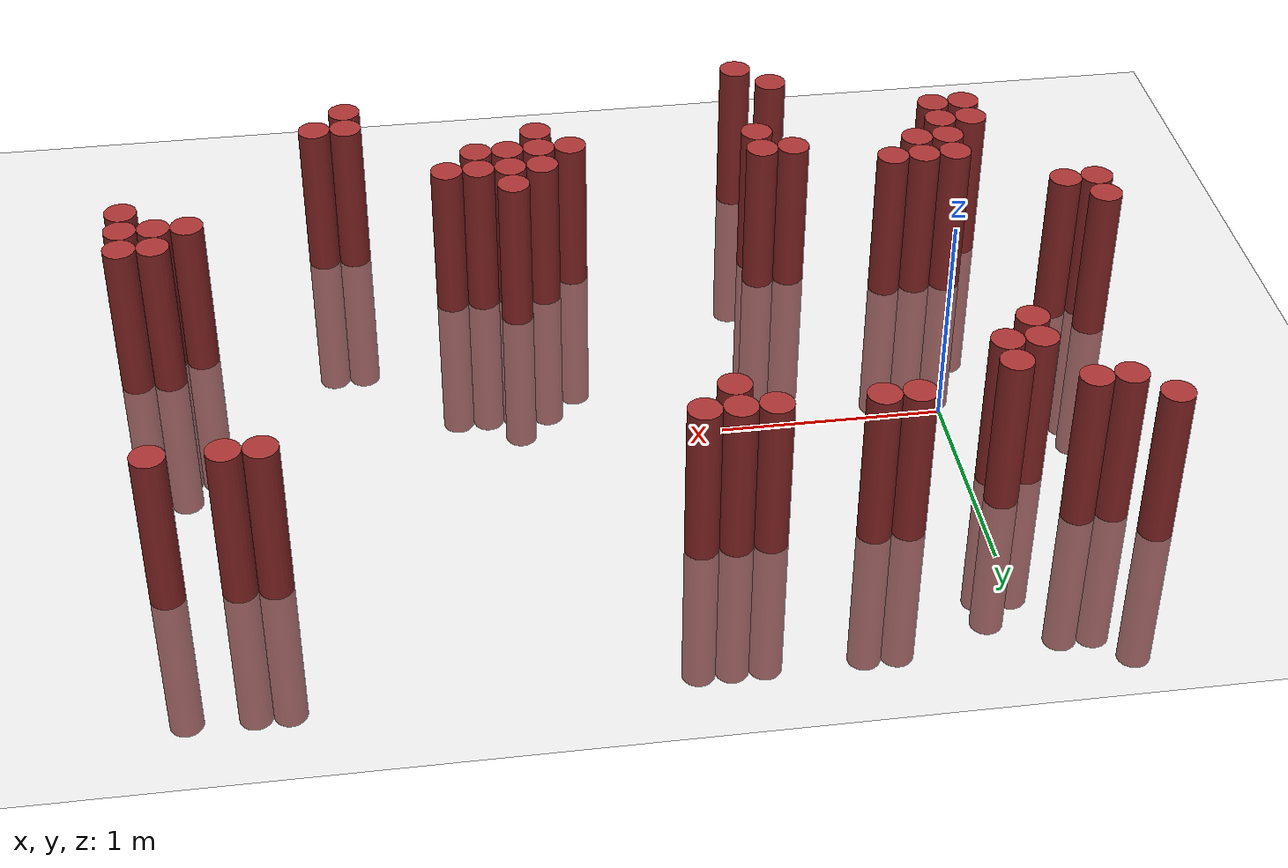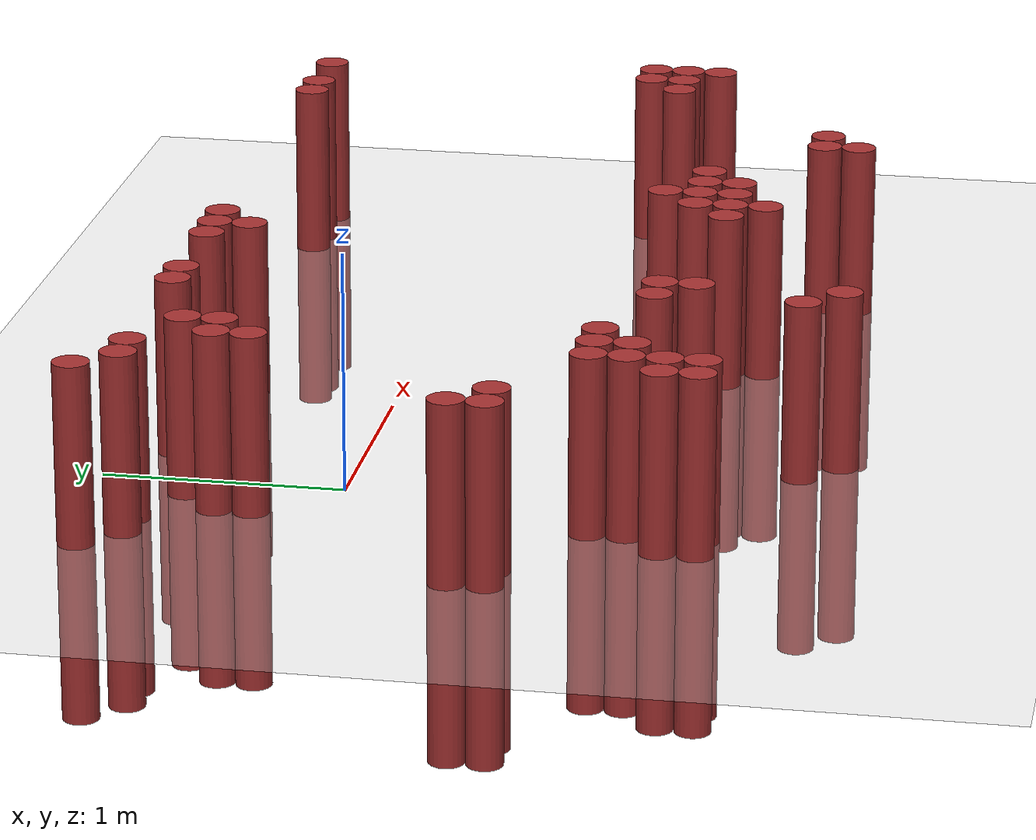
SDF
<sdf version="1.6">
 <world name="default">
  <model name="ground_plane">
   <static>1</static>
   <link name="link">
    <collision name="collision">
     <geometry><plane><normal>0 0 1</normal><size>100 100</size></plane></geometry>
     <surface><friction><ode><mu>100</mu><mu2>50</mu2></ode></friction></surface>
    </collision>
    <visual name="visual">
     <cast_shadows>0</cast_shadows>
     <geometry><plane><normal>0 0 1</normal><size>100 100</size></plane></geometry>
     <material>
      <script><uri>file://media/materials/scripts/gazebo.material</uri><name>Gazebo/Grey</name></script>
     </material>
    </visual>
   </link>
  </model>
  <model name="unit_cylinder_308">
   <static>1</static>
   <pose>-0.875000 -0.725000 0.000000 0.000000 0.000000 0.000000</pose>
   <link name="link">
    <inertial>
     <mass>1</mass>
     <inertia><ixx>0.145833</ixx><ixy>0</ixy><ixz>0</ixz><iyy>0.145833</iyy><iyz>0</iyz><izz>0.125</izz></inertia>
    </inertial>
    <collision name="collision">
     <geometry><cylinder><radius>0.075000</radius><length>1.5</length></cylinder></geometry>
    </collision>
    <visual name="visual">
     <geometry><cylinder><radius>0.075000</radius><length>1.5</length></cylinder></geometry>
     <material>
      <ambient>0.648000 0.192000 0.192000 1</ambient>
      <diffuse>0.648000 0.192000 0.192000 1</diffuse>
     </material>
     <material>
      <script><name>Gazebo/Grey</name><uri>file://media/materials/scripts/gazebo.material</uri></script>
     </material>
    </visual>
   </link>
  </model>
  <model name="unit_cylinder_309">
   <static>1</static>
   <pose>-0.875000 -0.575000 0.000000 0.000000 0.000000 0.000000</pose>
   <link name="link">
    <inertial>
     <mass>1</mass>
     <inertia><ixx>0.145833</ixx><ixy>0</ixy><ixz>0</ixz><iyy>0.145833</iyy><iyz>0</iyz><izz>0.125</izz></inertia>
    </inertial>
    <collision name="collision">
     <geometry><cylinder><radius>0.075000</radius><length>1.5</length></cylinder></geometry>
    </collision>
    <visual name="visual">
     <geometry><cylinder><radius>0.075000</radius><length>1.5</length></cylinder></geometry>
     <material>
      <ambient>0.648000 0.192000 0.192000 1</ambient>
      <diffuse>0.648000 0.192000 0.192000 1</diffuse>
     </material>
     <material>
      <script><name>Gazebo/Grey</name><uri>file://media/materials/scripts/gazebo.material</uri></script>
     </material>
    </visual>
   </link>
  </model>
  <model name="unit_cylinder_313">
   <static>1</static>
   <pose>-0.725000 -0.725000 0.000000 0.000000 0.000000 0.000000</pose>
   <link name="link">
    <inertial>
     <mass>1</mass>
     <inertia><ixx>0.145833</ixx><ixy>0</ixy><ixz>0</ixz><iyy>0.145833</iyy><iyz>0</iyz><izz>0.125</izz></inertia>
    </inertial>
    <collision name="collision">
     <geometry><cylinder><radius>0.075000</radius><length>1.5</length></cylinder></geometry>
    </collision>
    <visual name="visual">
     <geometry><cylinder><radius>0.075000</radius><length>1.5</length></cylinder></geometry>
     <material>
      <ambient>0.648000 0.192000 0.192000 1</ambient>
      <diffuse>0.648000 0.192000 0.192000 1</diffuse>
     </material>
     <material>
      <script><name>Gazebo/Grey</name><uri>file://media/materials/scripts/gazebo.material</uri></script>
     </material>
    </visual>
   </link>
  </model>
  <model name="unit_cylinder_314">
   <static>1</static>
   <pose>-0.725000 0.925000 0.000000 0.000000 0.000000 0.000000</pose>
   <link name="link">
    <inertial>
     <mass>1</mass>
     <inertia><ixx>0.145833</ixx><ixy>0</ixy><ixz>0</ixz><iyy>0.145833</iyy><iyz>0</iyz><izz>0.125</izz></inertia>
    </inertial>
    <collision name="collision">
     <geometry><cylinder><radius>0.075000</radius><length>1.5</length></cylinder></geometry>
    </collision>
    <visual name="visual">
     <geometry><cylinder><radius>0.075000</radius><length>1.5</length></cylinder></geometry>
     <material>
      <ambient>0.648000 0.192000 0.192000 1</ambient>
      <diffuse>0.648000 0.192000 0.192000 1</diffuse>
     </material>
     <material>
      <script><name>Gazebo/Grey</name><uri>file://media/materials/scripts/gazebo.material</uri></script>
     </material>
    </visual>
   </link>
  </model>
  <model name="unit_cylinder_318">
   <static>1</static>
   <pose>-0.575000 0.775000 0.000000 0.000000 0.000000 0.000000</pose>
   <link name="link">
    <inertial>
     <mass>1</mass>
     <inertia><ixx>0.145833</ixx><ixy>0</ixy><ixz>0</ixz><iyy>0.145833</iyy><iyz>0</iyz><izz>0.125</izz></inertia>
    </inertial>
    <collision name="collision">
     <geometry><cylinder><radius>0.075000</radius><length>1.5</length></cylinder></geometry>
    </collision>
    <visual name="visual">
     <geometry><cylinder><radius>0.075000</radius><length>1.5</length></cylinder></geometry>
     <material>
      <ambient>0.648000 0.192000 0.192000 1</ambient>
      <diffuse>0.648000 0.192000 0.192000 1</diffuse>
     </material>
     <material>
      <script><name>Gazebo/Grey</name><uri>file://media/materials/scripts/gazebo.material</uri></script>
     </material>
    </visual>
   </link>
  </model>
  <model name="unit_cylinder_320">
   <static>1</static>
   <pose>-0.425000 -1.475000 0.000000 0.000000 0.000000 0.000000</pose>
   <link name="link">
    <inertial>
     <mass>1</mass>
     <inertia><ixx>0.145833</ixx><ixy>0</ixy><ixz>0</ixz><iyy>0.145833</iyy><iyz>0</iyz><izz>0.125</izz></inertia>
    </inertial>
    <collision name="collision">
     <geometry><cylinder><radius>0.075000</radius><length>1.5</length></cylinder></geometry>
    </collision>
    <visual name="visual">
     <geometry><cylinder><radius>0.075000</radius><length>1.5</length></cylinder></geometry>
     <material>
      <ambient>0.648000 0.192000 0.192000 1</ambient>
      <diffuse>0.648000 0.192000 0.192000 1</diffuse>
     </material>
     <material>
      <script><name>Gazebo/Grey</name><uri>file://media/materials/scripts/gazebo.material</uri></script>
     </material>
    </visual>
   </link>
  </model>
  <model name="unit_cylinder_321">
   <static>1</static>
   <pose>-0.425000 -1.325000 0.000000 0.000000 0.000000 0.000000</pose>
   <link name="link">
    <inertial>
     <mass>1</mass>
     <inertia><ixx>0.145833</ixx><ixy>0</ixy><ixz>0</ixz><iyy>0.145833</iyy><iyz>0</iyz><izz>0.125</izz></inertia>
    </inertial>
    <collision name="collision">
     <geometry><cylinder><radius>0.075000</radius><length>1.5</length></cylinder></geometry>
    </collision>
    <visual name="visual">
     <geometry><cylinder><radius>0.075000</radius><length>1.5</length></cylinder></geometry>
     <material>
      <ambient>0.648000 0.192000 0.192000 1</ambient>
      <diffuse>0.648000 0.192000 0.192000 1</diffuse>
     </material>
     <material>
      <script><name>Gazebo/Grey</name><uri>file://media/materials/scripts/gazebo.material</uri></script>
     </material>
    </visual>
   </link>
  </model>
  <model name="unit_cylinder_322">
   <static>1</static>
   <pose>-0.425000 0.775000 0.000000 0.000000 0.000000 0.000000</pose>
   <link name="link">
    <inertial>
     <mass>1</mass>
     <inertia><ixx>0.145833</ixx><ixy>0</ixy><ixz>0</ixz><iyy>0.145833</iyy><iyz>0</iyz><izz>0.125</izz></inertia>
    </inertial>
    <collision name="collision">
     <geometry><cylinder><radius>0.075000</radius><length>1.5</length></cylinder></geometry>
    </collision>
    <visual name="visual">
     <geometry><cylinder><radius>0.075000</radius><length>1.5</length></cylinder></geometry>
     <material>
      <ambient>0.648000 0.192000 0.192000 1</ambient>
      <diffuse>0.648000 0.192000 0.192000 1</diffuse>
     </material>
     <material>
      <script><name>Gazebo/Grey</name><uri>file://media/materials/scripts/gazebo.material</uri></script>
     </material>
    </visual>
   </link>
  </model>
  <model name="unit_cylinder_323">
   <static>1</static>
   <pose>-0.275000 -1.475000 0.000000 0.000000 0.000000 0.000000</pose>
   <link name="link">
    <inertial>
     <mass>1</mass>
     <inertia><ixx>0.145833</ixx><ixy>0</ixy><ixz>0</ixz><iyy>0.145833</iyy><iyz>0</iyz><izz>0.125</izz></inertia>
    </inertial>
    <collision name="collision">
     <geometry><cylinder><radius>0.075000</radius><length>1.5</length></cylinder></geometry>
    </collision>
    <visual name="visual">
     <geometry><cylinder><radius>0.075000</radius><length>1.5</length></cylinder></geometry>
     <material>
      <ambient>0.648000 0.192000 0.192000 1</ambient>
      <diffuse>0.648000 0.192000 0.192000 1</diffuse>
     </material>
     <material>
      <script><name>Gazebo/Grey</name><uri>file://media/materials/scripts/gazebo.material</uri></script>
     </material>
    </visual>
   </link>
  </model>
  <model name="unit_cylinder_324">
   <static>1</static>
   <pose>-0.275000 -1.325000 0.000000 0.000000 0.000000 0.000000</pose>
   <link name="link">
    <inertial>
     <mass>1</mass>
     <inertia><ixx>0.145833</ixx><ixy>0</ixy><ixz>0</ixz><iyy>0.145833</iyy><iyz>0</iyz><izz>0.125</izz></inertia>
    </inertial>
    <collision name="collision">
     <geometry><cylinder><radius>0.075000</radius><length>1.5</length></cylinder></geometry>
    </collision>
    <visual name="visual">
     <geometry><cylinder><radius>0.075000</radius><length>1.5</length></cylinder></geometry>
     <material>
      <ambient>0.648000 0.192000 0.192000 1</ambient>
      <diffuse>0.648000 0.192000 0.192000 1</diffuse>
     </material>
     <material>
      <script><name>Gazebo/Grey</name><uri>file://media/materials/scripts/gazebo.material</uri></script>
     </material>
    </visual>
   </link>
  </model>
  <model name="unit_cylinder_325">
   <static>1</static>
   <pose>-0.275000 -1.175000 0.000000 0.000000 0.000000 0.000000</pose>
   <link name="link">
    <inertial>
     <mass>1</mass>
     <inertia><ixx>0.145833</ixx><ixy>0</ixy><ixz>0</ixz><iyy>0.145833</iyy><iyz>0</iyz><izz>0.125</izz></inertia>
    </inertial>
    <collision name="collision">
     <geometry><cylinder><radius>0.075000</radius><length>1.5</length></cylinder></geometry>
    </collision>
    <visual name="visual">
     <geometry><cylinder><radius>0.075000</radius><length>1.5</length></cylinder></geometry>
     <material>
      <ambient>0.648000 0.192000 0.192000 1</ambient>
      <diffuse>0.648000 0.192000 0.192000 1</diffuse>
     </material>
     <material>
      <script><name>Gazebo/Grey</name><uri>file://media/materials/scripts/gazebo.material</uri></script>
     </material>
    </visual>
   </link>
  </model>
  <model name="unit_cylinder_326">
   <static>1</static>
   <pose>-0.275000 -1.025000 0.000000 0.000000 0.000000 0.000000</pose>
   <link name="link">
    <inertial>
     <mass>1</mass>
     <inertia><ixx>0.145833</ixx><ixy>0</ixy><ixz>0</ixz><iyy>0.145833</iyy><iyz>0</iyz><izz>0.125</izz></inertia>
    </inertial>
    <collision name="collision">
     <geometry><cylinder><radius>0.075000</radius><length>1.5</length></cylinder></geometry>
    </collision>
    <visual name="visual">
     <geometry><cylinder><radius>0.075000</radius><length>1.5</length></cylinder></geometry>
     <material>
      <ambient>0.648000 0.192000 0.192000 1</ambient>
      <diffuse>0.648000 0.192000 0.192000 1</diffuse>
     </material>
     <material>
      <script><name>Gazebo/Grey</name><uri>file://media/materials/scripts/gazebo.material</uri></script>
     </material>
    </visual>
   </link>
  </model>
  <model name="unit_cylinder_327">
   <static>1</static>
   <pose>-0.275000 0.325000 0.000000 0.000000 0.000000 0.000000</pose>
   <link name="link">
    <inertial>
     <mass>1</mass>
     <inertia><ixx>0.145833</ixx><ixy>0</ixy><ixz>0</ixz><iyy>0.145833</iyy><iyz>0</iyz><izz>0.125</izz></inertia>
    </inertial>
    <collision name="collision">
     <geometry><cylinder><radius>0.075000</radius><length>1.5</length></cylinder></geometry>
    </collision>
    <visual name="visual">
     <geometry><cylinder><radius>0.075000</radius><length>1.5</length></cylinder></geometry>
     <material>
      <ambient>0.648000 0.192000 0.192000 1</ambient>
      <diffuse>0.648000 0.192000 0.192000 1</diffuse>
     </material>
     <material>
      <script><name>Gazebo/Grey</name><uri>file://media/materials/scripts/gazebo.material</uri></script>
     </material>
    </visual>
   </link>
  </model>
  <model name="unit_cylinder_328">
   <static>1</static>
   <pose>-0.275000 0.475000 0.000000 0.000000 0.000000 0.000000</pose>
   <link name="link">
    <inertial>
     <mass>1</mass>
     <inertia><ixx>0.145833</ixx><ixy>0</ixy><ixz>0</ixz><iyy>0.145833</iyy><iyz>0</iyz><izz>0.125</izz></inertia>
    </inertial>
    <collision name="collision">
     <geometry><cylinder><radius>0.075000</radius><length>1.5</length></cylinder></geometry>
    </collision>
    <visual name="visual">
     <geometry><cylinder><radius>0.075000</radius><length>1.5</length></cylinder></geometry>
     <material>
      <ambient>0.648000 0.192000 0.192000 1</ambient>
      <diffuse>0.648000 0.192000 0.192000 1</diffuse>
     </material>
     <material>
      <script><name>Gazebo/Grey</name><uri>file://media/materials/scripts/gazebo.material</uri></script>
     </material>
    </visual>
   </link>
  </model>
  <model name="unit_cylinder_329">
   <static>1</static>
   <pose>-0.125000 -1.175000 0.000000 0.000000 0.000000 0.000000</pose>
   <link name="link">
    <inertial>
     <mass>1</mass>
     <inertia><ixx>0.145833</ixx><ixy>0</ixy><ixz>0</ixz><iyy>0.145833</iyy><iyz>0</iyz><izz>0.125</izz></inertia>
    </inertial>
    <collision name="collision">
     <geometry><cylinder><radius>0.075000</radius><length>1.5</length></cylinder></geometry>
    </collision>
    <visual name="visual">
     <geometry><cylinder><radius>0.075000</radius><length>1.5</length></cylinder></geometry>
     <material>
      <ambient>0.648000 0.192000 0.192000 1</ambient>
      <diffuse>0.648000 0.192000 0.192000 1</diffuse>
     </material>
     <material>
      <script><name>Gazebo/Grey</name><uri>file://media/materials/scripts/gazebo.material</uri></script>
     </material>
    </visual>
   </link>
  </model>
  <model name="unit_cylinder_330">
   <static>1</static>
   <pose>-0.125000 -1.025000 0.000000 0.000000 0.000000 0.000000</pose>
   <link name="link">
    <inertial>
     <mass>1</mass>
     <inertia><ixx>0.145833</ixx><ixy>0</ixy><ixz>0</ixz><iyy>0.145833</iyy><iyz>0</iyz><izz>0.125</izz></inertia>
    </inertial>
    <collision name="collision">
     <geometry><cylinder><radius>0.075000</radius><length>1.5</length></cylinder></geometry>
    </collision>
    <visual name="visual">
     <geometry><cylinder><radius>0.075000</radius><length>1.5</length></cylinder></geometry>
     <material>
      <ambient>0.648000 0.192000 0.192000 1</ambient>
      <diffuse>0.648000 0.192000 0.192000 1</diffuse>
     </material>
     <material>
      <script><name>Gazebo/Grey</name><uri>file://media/materials/scripts/gazebo.material</uri></script>
     </material>
    </visual>
   </link>
  </model>
  <model name="unit_cylinder_331">
   <static>1</static>
   <pose>-0.125000 0.475000 0.000000 0.000000 0.000000 0.000000</pose>
   <link name="link">
    <inertial>
     <mass>1</mass>
     <inertia><ixx>0.145833</ixx><ixy>0</ixy><ixz>0</ixz><iyy>0.145833</iyy><iyz>0</iyz><izz>0.125</izz></inertia>
    </inertial>
    <collision name="collision">
     <geometry><cylinder><radius>0.075000</radius><length>1.5</length></cylinder></geometry>
    </collision>
    <visual name="visual">
     <geometry><cylinder><radius>0.075000</radius><length>1.5</length></cylinder></geometry>
     <material>
      <ambient>0.648000 0.192000 0.192000 1</ambient>
      <diffuse>0.648000 0.192000 0.192000 1</diffuse>
     </material>
     <material>
      <script><name>Gazebo/Grey</name><uri>file://media/materials/scripts/gazebo.material</uri></script>
     </material>
    </visual>
   </link>
  </model>
  <model name="unit_cylinder_332">
   <static>1</static>
   <pose>-0.125000 0.625000 0.000000 0.000000 0.000000 0.000000</pose>
   <link name="link">
    <inertial>
     <mass>1</mass>
     <inertia><ixx>0.145833</ixx><ixy>0</ixy><ixz>0</ixz><iyy>0.145833</iyy><iyz>0</iyz><izz>0.125</izz></inertia>
    </inertial>
    <collision name="collision">
     <geometry><cylinder><radius>0.075000</radius><length>1.5</length></cylinder></geometry>
    </collision>
    <visual name="visual">
     <geometry><cylinder><radius>0.075000</radius><length>1.5</length></cylinder></geometry>
     <material>
      <ambient>0.648000 0.192000 0.192000 1</ambient>
      <diffuse>0.648000 0.192000 0.192000 1</diffuse>
     </material>
     <material>
      <script><name>Gazebo/Grey</name><uri>file://media/materials/scripts/gazebo.material</uri></script>
     </material>
    </visual>
   </link>
  </model>
  <model name="unit_cylinder_335">
   <static>1</static>
   <pose>0.025000 -1.025000 0.000000 0.000000 0.000000 0.000000</pose>
   <link name="link">
    <inertial>
     <mass>1</mass>
     <inertia><ixx>0.145833</ixx><ixy>0</ixy><ixz>0</ixz><iyy>0.145833</iyy><iyz>0</iyz><izz>0.125</izz></inertia>
    </inertial>
    <collision name="collision">
     <geometry><cylinder><radius>0.075000</radius><length>1.5</length></cylinder></geometry>
    </collision>
    <visual name="visual">
     <geometry><cylinder><radius>0.075000</radius><length>1.5</length></cylinder></geometry>
     <material>
      <ambient>0.648000 0.192000 0.192000 1</ambient>
      <diffuse>0.648000 0.192000 0.192000 1</diffuse>
     </material>
     <material>
      <script><name>Gazebo/Grey</name><uri>file://media/materials/scripts/gazebo.material</uri></script>
     </material>
    </visual>
   </link>
  </model>
  <model name="unit_cylinder_338">
   <static>1</static>
   <pose>0.325000 0.775000 0.000000 0.000000 0.000000 0.000000</pose>
   <link name="link">
    <inertial>
     <mass>1</mass>
     <inertia><ixx>0.145833</ixx><ixy>0</ixy><ixz>0</ixz><iyy>0.145833</iyy><iyz>0</iyz><izz>0.125</izz></inertia>
    </inertial>
    <collision name="collision">
     <geometry><cylinder><radius>0.075000</radius><length>1.5</length></cylinder></geometry>
    </collision>
    <visual name="visual">
     <geometry><cylinder><radius>0.075000</radius><length>1.5</length></cylinder></geometry>
     <material>
      <ambient>0.648000 0.192000 0.192000 1</ambient>
      <diffuse>0.648000 0.192000 0.192000 1</diffuse>
     </material>
     <material>
      <script><name>Gazebo/Grey</name><uri>file://media/materials/scripts/gazebo.material</uri></script>
     </material>
    </visual>
   </link>
  </model>
  <model name="unit_cylinder_340">
   <static>1</static>
   <pose>0.475000 -1.775000 0.000000 0.000000 0.000000 0.000000</pose>
   <link name="link">
    <inertial>
     <mass>1</mass>
     <inertia><ixx>0.145833</ixx><ixy>0</ixy><ixz>0</ixz><iyy>0.145833</iyy><iyz>0</iyz><izz>0.125</izz></inertia>
    </inertial>
    <collision name="collision">
     <geometry><cylinder><radius>0.075000</radius><length>1.5</length></cylinder></geometry>
    </collision>
    <visual name="visual">
     <geometry><cylinder><radius>0.075000</radius><length>1.5</length></cylinder></geometry>
     <material>
      <ambient>0.648000 0.192000 0.192000 1</ambient>
      <diffuse>0.648000 0.192000 0.192000 1</diffuse>
     </material>
     <material>
      <script><name>Gazebo/Grey</name><uri>file://media/materials/scripts/gazebo.material</uri></script>
     </material>
    </visual>
   </link>
  </model>
  <model name="unit_cylinder_341">
   <static>1</static>
   <pose>0.475000 -1.175000 0.000000 0.000000 0.000000 0.000000</pose>
   <link name="link">
    <inertial>
     <mass>1</mass>
     <inertia><ixx>0.145833</ixx><ixy>0</ixy><ixz>0</ixz><iyy>0.145833</iyy><iyz>0</iyz><izz>0.125</izz></inertia>
    </inertial>
    <collision name="collision">
     <geometry><cylinder><radius>0.075000</radius><length>1.5</length></cylinder></geometry>
    </collision>
    <visual name="visual">
     <geometry><cylinder><radius>0.075000</radius><length>1.5</length></cylinder></geometry>
     <material>
      <ambient>0.648000 0.192000 0.192000 1</ambient>
      <diffuse>0.648000 0.192000 0.192000 1</diffuse>
     </material>
     <material>
      <script><name>Gazebo/Grey</name><uri>file://media/materials/scripts/gazebo.material</uri></script>
     </material>
    </visual>
   </link>
  </model>
  <model name="unit_cylinder_342">
   <static>1</static>
   <pose>0.475000 0.775000 0.000000 0.000000 0.000000 0.000000</pose>
   <link name="link">
    <inertial>
     <mass>1</mass>
     <inertia><ixx>0.145833</ixx><ixy>0</ixy><ixz>0</ixz><iyy>0.145833</iyy><iyz>0</iyz><izz>0.125</izz></inertia>
    </inertial>
    <collision name="collision">
     <geometry><cylinder><radius>0.075000</radius><length>1.5</length></cylinder></geometry>
    </collision>
    <visual name="visual">
     <geometry><cylinder><radius>0.075000</radius><length>1.5</length></cylinder></geometry>
     <material>
      <ambient>0.648000 0.192000 0.192000 1</ambient>
      <diffuse>0.648000 0.192000 0.192000 1</diffuse>
     </material>
     <material>
      <script><name>Gazebo/Grey</name><uri>file://media/materials/scripts/gazebo.material</uri></script>
     </material>
    </visual>
   </link>
  </model>
  <model name="unit_cylinder_345">
   <static>1</static>
   <pose>0.625000 -1.925000 0.000000 0.000000 0.000000 0.000000</pose>
   <link name="link">
    <inertial>
     <mass>1</mass>
     <inertia><ixx>0.145833</ixx><ixy>0</ixy><ixz>0</ixz><iyy>0.145833</iyy><iyz>0</iyz><izz>0.125</izz></inertia>
    </inertial>
    <collision name="collision">
     <geometry><cylinder><radius>0.075000</radius><length>1.5</length></cylinder></geometry>
    </collision>
    <visual name="visual">
     <geometry><cylinder><radius>0.075000</radius><length>1.5</length></cylinder></geometry>
     <material>
      <ambient>0.648000 0.192000 0.192000 1</ambient>
      <diffuse>0.648000 0.192000 0.192000 1</diffuse>
     </material>
     <material>
      <script><name>Gazebo/Grey</name><uri>file://media/materials/scripts/gazebo.material</uri></script>
     </material>
    </visual>
   </link>
  </model>
  <model name="unit_cylinder_346">
   <static>1</static>
   <pose>0.625000 -1.325000 0.000000 0.000000 0.000000 0.000000</pose>
   <link name="link">
    <inertial>
     <mass>1</mass>
     <inertia><ixx>0.145833</ixx><ixy>0</ixy><ixz>0</ixz><iyy>0.145833</iyy><iyz>0</iyz><izz>0.125</izz></inertia>
    </inertial>
    <collision name="collision">
     <geometry><cylinder><radius>0.075000</radius><length>1.5</length></cylinder></geometry>
    </collision>
    <visual name="visual">
     <geometry><cylinder><radius>0.075000</radius><length>1.5</length></cylinder></geometry>
     <material>
      <ambient>0.648000 0.192000 0.192000 1</ambient>
      <diffuse>0.648000 0.192000 0.192000 1</diffuse>
     </material>
     <material>
      <script><name>Gazebo/Grey</name><uri>file://media/materials/scripts/gazebo.material</uri></script>
     </material>
    </visual>
   </link>
  </model>
  <model name="unit_cylinder_347">
   <static>1</static>
   <pose>0.625000 -1.175000 0.000000 0.000000 0.000000 0.000000</pose>
   <link name="link">
    <inertial>
     <mass>1</mass>
     <inertia><ixx>0.145833</ixx><ixy>0</ixy><ixz>0</ixz><iyy>0.145833</iyy><iyz>0</iyz><izz>0.125</izz></inertia>
    </inertial>
    <collision name="collision">
     <geometry><cylinder><radius>0.075000</radius><length>1.5</length></cylinder></geometry>
    </collision>
    <visual name="visual">
     <geometry><cylinder><radius>0.075000</radius><length>1.5</length></cylinder></geometry>
     <material>
      <ambient>0.648000 0.192000 0.192000 1</ambient>
      <diffuse>0.648000 0.192000 0.192000 1</diffuse>
     </material>
     <material>
      <script><name>Gazebo/Grey</name><uri>file://media/materials/scripts/gazebo.material</uri></script>
     </material>
    </visual>
   </link>
  </model>
  <model name="unit_cylinder_357">
   <static>1</static>
   <pose>0.925000 0.775000 0.000000 0.000000 0.000000 0.000000</pose>
   <link name="link">
    <inertial>
     <mass>1</mass>
     <inertia><ixx>0.145833</ixx><ixy>0</ixy><ixz>0</ixz><iyy>0.145833</iyy><iyz>0</iyz><izz>0.125</izz></inertia>
    </inertial>
    <collision name="collision">
     <geometry><cylinder><radius>0.075000</radius><length>1.5</length></cylinder></geometry>
    </collision>
    <visual name="visual">
     <geometry><cylinder><radius>0.075000</radius><length>1.5</length></cylinder></geometry>
     <material>
      <ambient>0.648000 0.192000 0.192000 1</ambient>
      <diffuse>0.648000 0.192000 0.192000 1</diffuse>
     </material>
     <material>
      <script><name>Gazebo/Grey</name><uri>file://media/materials/scripts/gazebo.material</uri></script>
     </material>
    </visual>
   </link>
  </model>
  <model name="unit_cylinder_363">
   <static>1</static>
   <pose>1.075000 0.625000 0.000000 0.000000 0.000000 0.000000</pose>
   <link name="link">
    <inertial>
     <mass>1</mass>
     <inertia><ixx>0.145833</ixx><ixy>0</ixy><ixz>0</ixz><iyy>0.145833</iyy><iyz>0</iyz><izz>0.125</izz></inertia>
    </inertial>
    <collision name="collision">
     <geometry><cylinder><radius>0.075000</radius><length>1.5</length></cylinder></geometry>
    </collision>
    <visual name="visual">
     <geometry><cylinder><radius>0.075000</radius><length>1.5</length></cylinder></geometry>
     <material>
      <ambient>0.648000 0.192000 0.192000 1</ambient>
      <diffuse>0.648000 0.192000 0.192000 1</diffuse>
     </material>
     <material>
      <script><name>Gazebo/Grey</name><uri>file://media/materials/scripts/gazebo.material</uri></script>
     </material>
    </visual>
   </link>
  </model>
  <model name="unit_cylinder_364">
   <static>1</static>
   <pose>1.075000 0.775000 0.000000 0.000000 0.000000 0.000000</pose>
   <link name="link">
    <inertial>
     <mass>1</mass>
     <inertia><ixx>0.145833</ixx><ixy>0</ixy><ixz>0</ixz><iyy>0.145833</iyy><iyz>0</iyz><izz>0.125</izz></inertia>
    </inertial>
    <collision name="collision">
     <geometry><cylinder><radius>0.075000</radius><length>1.5</length></cylinder></geometry>
    </collision>
    <visual name="visual">
     <geometry><cylinder><radius>0.075000</radius><length>1.5</length></cylinder></geometry>
     <material>
      <ambient>0.648000 0.192000 0.192000 1</ambient>
      <diffuse>0.648000 0.192000 0.192000 1</diffuse>
     </material>
     <material>
      <script><name>Gazebo/Grey</name><uri>file://media/materials/scripts/gazebo.material</uri></script>
     </material>
    </visual>
   </link>
  </model>
  <model name="unit_cylinder_370">
   <static>1</static>
   <pose>1.225000 0.775000 0.000000 0.000000 0.000000 0.000000</pose>
   <link name="link">
    <inertial>
     <mass>1</mass>
     <inertia><ixx>0.145833</ixx><ixy>0</ixy><ixz>0</ixz><iyy>0.145833</iyy><iyz>0</iyz><izz>0.125</izz></inertia>
    </inertial>
    <collision name="collision">
     <geometry><cylinder><radius>0.075000</radius><length>1.5</length></cylinder></geometry>
    </collision>
    <visual name="visual">
     <geometry><cylinder><radius>0.075000</radius><length>1.5</length></cylinder></geometry>
     <material>
      <ambient>0.648000 0.192000 0.192000 1</ambient>
      <diffuse>0.648000 0.192000 0.192000 1</diffuse>
     </material>
     <material>
      <script><name>Gazebo/Grey</name><uri>file://media/materials/scripts/gazebo.material</uri></script>
     </material>
    </visual>
   </link>
  </model>
  <model name="unit_cylinder_377">
   <static>1</static>
   <pose>1.525000 -1.325000 0.000000 0.000000 0.000000 0.000000</pose>
   <link name="link">
    <inertial>
     <mass>1</mass>
     <inertia><ixx>0.145833</ixx><ixy>0</ixy><ixz>0</ixz><iyy>0.145833</iyy><iyz>0</iyz><izz>0.125</izz></inertia>
    </inertial>
    <collision name="collision">
     <geometry><cylinder><radius>0.075000</radius><length>1.5</length></cylinder></geometry>
    </collision>
    <visual name="visual">
     <geometry><cylinder><radius>0.075000</radius><length>1.5</length></cylinder></geometry>
     <material>
      <ambient>0.648000 0.192000 0.192000 1</ambient>
      <diffuse>0.648000 0.192000 0.192000 1</diffuse>
     </material>
     <material>
      <script><name>Gazebo/Grey</name><uri>file://media/materials/scripts/gazebo.material</uri></script>
     </material>
    </visual>
   </link>
  </model>
  <model name="unit_cylinder_380">
   <static>1</static>
   <pose>1.675000 -1.475000 0.000000 0.000000 0.000000 0.000000</pose>
   <link name="link">
    <inertial>
     <mass>1</mass>
     <inertia><ixx>0.145833</ixx><ixy>0</ixy><ixz>0</ixz><iyy>0.145833</iyy><iyz>0</iyz><izz>0.125</izz></inertia>
    </inertial>
    <collision name="collision">
     <geometry><cylinder><radius>0.075000</radius><length>1.5</length></cylinder></geometry>
    </collision>
    <visual name="visual">
     <geometry><cylinder><radius>0.075000</radius><length>1.5</length></cylinder></geometry>
     <material>
      <ambient>0.648000 0.192000 0.192000 1</ambient>
      <diffuse>0.648000 0.192000 0.192000 1</diffuse>
     </material>
     <material>
      <script><name>Gazebo/Grey</name><uri>file://media/materials/scripts/gazebo.material</uri></script>
     </material>
    </visual>
   </link>
  </model>
  <model name="unit_cylinder_381">
   <static>1</static>
   <pose>1.675000 -1.325000 0.000000 0.000000 0.000000 0.000000</pose>
   <link name="link">
    <inertial>
     <mass>1</mass>
     <inertia><ixx>0.145833</ixx><ixy>0</ixy><ixz>0</ixz><iyy>0.145833</iyy><iyz>0</iyz><izz>0.125</izz></inertia>
    </inertial>
    <collision name="collision">
     <geometry><cylinder><radius>0.075000</radius><length>1.5</length></cylinder></geometry>
    </collision>
    <visual name="visual">
     <geometry><cylinder><radius>0.075000</radius><length>1.5</length></cylinder></geometry>
     <material>
      <ambient>0.648000 0.192000 0.192000 1</ambient>
      <diffuse>0.648000 0.192000 0.192000 1</diffuse>
     </material>
     <material>
      <script><name>Gazebo/Grey</name><uri>file://media/materials/scripts/gazebo.material</uri></script>
     </material>
    </visual>
   </link>
  </model>
  <model name="unit_cylinder_382">
   <static>1</static>
   <pose>1.675000 -1.175000 0.000000 0.000000 0.000000 0.000000</pose>
   <link name="link">
    <inertial>
     <mass>1</mass>
     <inertia><ixx>0.145833</ixx><ixy>0</ixy><ixz>0</ixz><iyy>0.145833</iyy><iyz>0</iyz><izz>0.125</izz></inertia>
    </inertial>
    <collision name="collision">
     <geometry><cylinder><radius>0.075000</radius><length>1.5</length></cylinder></geometry>
    </collision>
    <visual name="visual">
     <geometry><cylinder><radius>0.075000</radius><length>1.5</length></cylinder></geometry>
     <material>
      <ambient>0.648000 0.192000 0.192000 1</ambient>
      <diffuse>0.648000 0.192000 0.192000 1</diffuse>
     </material>
     <material>
      <script><name>Gazebo/Grey</name><uri>file://media/materials/scripts/gazebo.material</uri></script>
     </material>
    </visual>
   </link>
  </model>
  <model name="unit_cylinder_384">
   <static>1</static>
   <pose>1.825000 -1.325000 0.000000 0.000000 0.000000 0.000000</pose>
   <link name="link">
    <inertial>
     <mass>1</mass>
     <inertia><ixx>0.145833</ixx><ixy>0</ixy><ixz>0</ixz><iyy>0.145833</iyy><iyz>0</iyz><izz>0.125</izz></inertia>
    </inertial>
    <collision name="collision">
     <geometry><cylinder><radius>0.075000</radius><length>1.5</length></cylinder></geometry>
    </collision>
    <visual name="visual">
     <geometry><cylinder><radius>0.075000</radius><length>1.5</length></cylinder></geometry>
     <material>
      <ambient>0.648000 0.192000 0.192000 1</ambient>
      <diffuse>0.648000 0.192000 0.192000 1</diffuse>
     </material>
     <material>
      <script><name>Gazebo/Grey</name><uri>file://media/materials/scripts/gazebo.material</uri></script>
     </material>
    </visual>
   </link>
  </model>
  <model name="unit_cylinder_385">
   <static>1</static>
   <pose>1.825000 -1.175000 0.000000 0.000000 0.000000 0.000000</pose>
   <link name="link">
    <inertial>
     <mass>1</mass>
     <inertia><ixx>0.145833</ixx><ixy>0</ixy><ixz>0</ixz><iyy>0.145833</iyy><iyz>0</iyz><izz>0.125</izz></inertia>
    </inertial>
    <collision name="collision">
     <geometry><cylinder><radius>0.075000</radius><length>1.5</length></cylinder></geometry>
    </collision>
    <visual name="visual">
     <geometry><cylinder><radius>0.075000</radius><length>1.5</length></cylinder></geometry>
     <material>
      <ambient>0.648000 0.192000 0.192000 1</ambient>
      <diffuse>0.648000 0.192000 0.192000 1</diffuse>
     </material>
     <material>
      <script><name>Gazebo/Grey</name><uri>file://media/materials/scripts/gazebo.material</uri></script>
     </material>
    </visual>
   </link>
  </model>
  <model name="unit_cylinder_386">
   <static>1</static>
   <pose>1.825000 -1.025000 0.000000 0.000000 0.000000 0.000000</pose>
   <link name="link">
    <inertial>
     <mass>1</mass>
     <inertia><ixx>0.145833</ixx><ixy>0</ixy><ixz>0</ixz><iyy>0.145833</iyy><iyz>0</iyz><izz>0.125</izz></inertia>
    </inertial>
    <collision name="collision">
     <geometry><cylinder><radius>0.075000</radius><length>1.5</length></cylinder></geometry>
    </collision>
    <visual name="visual">
     <geometry><cylinder><radius>0.075000</radius><length>1.5</length></cylinder></geometry>
     <material>
      <ambient>0.648000 0.192000 0.192000 1</ambient>
      <diffuse>0.648000 0.192000 0.192000 1</diffuse>
     </material>
     <material>
      <script><name>Gazebo/Grey</name><uri>file://media/materials/scripts/gazebo.material</uri></script>
     </material>
    </visual>
   </link>
  </model>
  <model name="unit_cylinder_388">
   <static>1</static>
   <pose>1.975000 -1.325000 0.000000 0.000000 0.000000 0.000000</pose>
   <link name="link">
    <inertial>
     <mass>1</mass>
     <inertia><ixx>0.145833</ixx><ixy>0</ixy><ixz>0</ixz><iyy>0.145833</iyy><iyz>0</iyz><izz>0.125</izz></inertia>
    </inertial>
    <collision name="collision">
     <geometry><cylinder><radius>0.075000</radius><length>1.5</length></cylinder></geometry>
    </collision>
    <visual name="visual">
     <geometry><cylinder><radius>0.075000</radius><length>1.5</length></cylinder></geometry>
     <material>
      <ambient>0.648000 0.192000 0.192000 1</ambient>
      <diffuse>0.648000 0.192000 0.192000 1</diffuse>
     </material>
     <material>
      <script><name>Gazebo/Grey</name><uri>file://media/materials/scripts/gazebo.material</uri></script>
     </material>
    </visual>
   </link>
  </model>
  <model name="unit_cylinder_389">
   <static>1</static>
   <pose>1.975000 -1.175000 0.000000 0.000000 0.000000 0.000000</pose>
   <link name="link">
    <inertial>
     <mass>1</mass>
     <inertia><ixx>0.145833</ixx><ixy>0</ixy><ixz>0</ixz><iyy>0.145833</iyy><iyz>0</iyz><izz>0.125</izz></inertia>
    </inertial>
    <collision name="collision">
     <geometry><cylinder><radius>0.075000</radius><length>1.5</length></cylinder></geometry>
    </collision>
    <visual name="visual">
     <geometry><cylinder><radius>0.075000</radius><length>1.5</length></cylinder></geometry>
     <material>
      <ambient>0.648000 0.192000 0.192000 1</ambient>
      <diffuse>0.648000 0.192000 0.192000 1</diffuse>
     </material>
     <material>
      <script><name>Gazebo/Grey</name><uri>file://media/materials/scripts/gazebo.material</uri></script>
     </material>
    </visual>
   </link>
  </model>
  <model name="unit_cylinder_394">
   <static>1</static>
   <pose>2.125000 -1.175000 0.000000 0.000000 0.000000 0.000000</pose>
   <link name="link">
    <inertial>
     <mass>1</mass>
     <inertia><ixx>0.145833</ixx><ixy>0</ixy><ixz>0</ixz><iyy>0.145833</iyy><iyz>0</iyz><izz>0.125</izz></inertia>
    </inertial>
    <collision name="collision">
     <geometry><cylinder><radius>0.075000</radius><length>1.5</length></cylinder></geometry>
    </collision>
    <visual name="visual">
     <geometry><cylinder><radius>0.075000</radius><length>1.5</length></cylinder></geometry>
     <material>
      <ambient>0.648000 0.192000 0.192000 1</ambient>
      <diffuse>0.648000 0.192000 0.192000 1</diffuse>
     </material>
     <material>
      <script><name>Gazebo/Grey</name><uri>file://media/materials/scripts/gazebo.material</uri></script>
     </material>
    </visual>
   </link>
  </model>
  <model name="unit_cylinder_402">
   <static>1</static>
   <pose>2.575000 -1.775000 0.000000 0.000000 0.000000 0.000000</pose>
   <link name="link">
    <inertial>
     <mass>1</mass>
     <inertia><ixx>0.145833</ixx><ixy>0</ixy><ixz>0</ixz><iyy>0.145833</iyy><iyz>0</iyz><izz>0.125</izz></inertia>
    </inertial>
    <collision name="collision">
     <geometry><cylinder><radius>0.075000</radius><length>1.5</length></cylinder></geometry>
    </collision>
    <visual name="visual">
     <geometry><cylinder><radius>0.075000</radius><length>1.5</length></cylinder></geometry>
     <material>
      <ambient>0.648000 0.192000 0.192000 1</ambient>
      <diffuse>0.648000 0.192000 0.192000 1</diffuse>
     </material>
     <material>
      <script><name>Gazebo/Grey</name><uri>file://media/materials/scripts/gazebo.material</uri></script>
     </material>
    </visual>
   </link>
  </model>
  <model name="unit_cylinder_403">
   <static>1</static>
   <pose>2.575000 -1.625000 0.000000 0.000000 0.000000 0.000000</pose>
   <link name="link">
    <inertial>
     <mass>1</mass>
     <inertia><ixx>0.145833</ixx><ixy>0</ixy><ixz>0</ixz><iyy>0.145833</iyy><iyz>0</iyz><izz>0.125</izz></inertia>
    </inertial>
    <collision name="collision">
     <geometry><cylinder><radius>0.075000</radius><length>1.5</length></cylinder></geometry>
    </collision>
    <visual name="visual">
     <geometry><cylinder><radius>0.075000</radius><length>1.5</length></cylinder></geometry>
     <material>
      <ambient>0.648000 0.192000 0.192000 1</ambient>
      <diffuse>0.648000 0.192000 0.192000 1</diffuse>
     </material>
     <material>
      <script><name>Gazebo/Grey</name><uri>file://media/materials/scripts/gazebo.material</uri></script>
     </material>
    </visual>
   </link>
  </model>
  <model name="unit_cylinder_405">
   <static>1</static>
   <pose>2.725000 -1.625000 0.000000 0.000000 0.000000 0.000000</pose>
   <link name="link">
    <inertial>
     <mass>1</mass>
     <inertia><ixx>0.145833</ixx><ixy>0</ixy><ixz>0</ixz><iyy>0.145833</iyy><iyz>0</iyz><izz>0.125</izz></inertia>
    </inertial>
    <collision name="collision">
     <geometry><cylinder><radius>0.075000</radius><length>1.5</length></cylinder></geometry>
    </collision>
    <visual name="visual">
     <geometry><cylinder><radius>0.075000</radius><length>1.5</length></cylinder></geometry>
     <material>
      <ambient>0.648000 0.192000 0.192000 1</ambient>
      <diffuse>0.648000 0.192000 0.192000 1</diffuse>
     </material>
     <material>
      <script><name>Gazebo/Grey</name><uri>file://media/materials/scripts/gazebo.material</uri></script>
     </material>
    </visual>
   </link>
  </model>
  <model name="unit_cylinder_409">
   <static>1</static>
   <pose>3.025000 0.775000 0.000000 0.000000 0.000000 0.000000</pose>
   <link name="link">
    <inertial>
     <mass>1</mass>
     <inertia><ixx>0.145833</ixx><ixy>0</ixy><ixz>0</ixz><iyy>0.145833</iyy><iyz>0</iyz><izz>0.125</izz></inertia>
    </inertial>
    <collision name="collision">
     <geometry><cylinder><radius>0.075000</radius><length>1.5</length></cylinder></geometry>
    </collision>
    <visual name="visual">
     <geometry><cylinder><radius>0.075000</radius><length>1.5</length></cylinder></geometry>
     <material>
      <ambient>0.648000 0.192000 0.192000 1</ambient>
      <diffuse>0.648000 0.192000 0.192000 1</diffuse>
     </material>
     <material>
      <script><name>Gazebo/Grey</name><uri>file://media/materials/scripts/gazebo.material</uri></script>
     </material>
    </visual>
   </link>
  </model>
  <model name="unit_cylinder_412">
   <static>1</static>
   <pose>3.175000 0.775000 0.000000 0.000000 0.000000 0.000000</pose>
   <link name="link">
    <inertial>
     <mass>1</mass>
     <inertia><ixx>0.145833</ixx><ixy>0</ixy><ixz>0</ixz><iyy>0.145833</iyy><iyz>0</iyz><izz>0.125</izz></inertia>
    </inertial>
    <collision name="collision">
     <geometry><cylinder><radius>0.075000</radius><length>1.5</length></cylinder></geometry>
    </collision>
    <visual name="visual">
     <geometry><cylinder><radius>0.075000</radius><length>1.5</length></cylinder></geometry>
     <material>
      <ambient>0.648000 0.192000 0.192000 1</ambient>
      <diffuse>0.648000 0.192000 0.192000 1</diffuse>
     </material>
     <material>
      <script><name>Gazebo/Grey</name><uri>file://media/materials/scripts/gazebo.material</uri></script>
     </material>
    </visual>
   </link>
  </model>
  <model name="unit_cylinder_416">
   <static>1</static>
   <pose>3.325000 -0.875000 0.000000 0.000000 0.000000 0.000000</pose>
   <link name="link">
    <inertial>
     <mass>1</mass>
     <inertia><ixx>0.145833</ixx><ixy>0</ixy><ixz>0</ixz><iyy>0.145833</iyy><iyz>0</iyz><izz>0.125</izz></inertia>
    </inertial>
    <collision name="collision">
     <geometry><cylinder><radius>0.075000</radius><length>1.5</length></cylinder></geometry>
    </collision>
    <visual name="visual">
     <geometry><cylinder><radius>0.075000</radius><length>1.5</length></cylinder></geometry>
     <material>
      <ambient>0.648000 0.192000 0.192000 1</ambient>
      <diffuse>0.648000 0.192000 0.192000 1</diffuse>
     </material>
     <material>
      <script><name>Gazebo/Grey</name><uri>file://media/materials/scripts/gazebo.material</uri></script>
     </material>
    </visual>
   </link>
  </model>
  <model name="unit_cylinder_420">
   <static>1</static>
   <pose>3.475000 -0.875000 0.000000 0.000000 0.000000 0.000000</pose>
   <link name="link">
    <inertial>
     <mass>1</mass>
     <inertia><ixx>0.145833</ixx><ixy>0</ixy><ixz>0</ixz><iyy>0.145833</iyy><iyz>0</iyz><izz>0.125</izz></inertia>
    </inertial>
    <collision name="collision">
     <geometry><cylinder><radius>0.075000</radius><length>1.5</length></cylinder></geometry>
    </collision>
    <visual name="visual">
     <geometry><cylinder><radius>0.075000</radius><length>1.5</length></cylinder></geometry>
     <material>
      <ambient>0.648000 0.192000 0.192000 1</ambient>
      <diffuse>0.648000 0.192000 0.192000 1</diffuse>
     </material>
     <material>
      <script><name>Gazebo/Grey</name><uri>file://media/materials/scripts/gazebo.material</uri></script>
     </material>
    </visual>
   </link>
  </model>
  <model name="unit_cylinder_421">
   <static>1</static>
   <pose>3.475000 -0.725000 0.000000 0.000000 0.000000 0.000000</pose>
   <link name="link">
    <inertial>
     <mass>1</mass>
     <inertia><ixx>0.145833</ixx><ixy>0</ixy><ixz>0</ixz><iyy>0.145833</iyy><iyz>0</iyz><izz>0.125</izz></inertia>
    </inertial>
    <collision name="collision">
     <geometry><cylinder><radius>0.075000</radius><length>1.5</length></cylinder></geometry>
    </collision>
    <visual name="visual">
     <geometry><cylinder><radius>0.075000</radius><length>1.5</length></cylinder></geometry>
     <material>
      <ambient>0.648000 0.192000 0.192000 1</ambient>
      <diffuse>0.648000 0.192000 0.192000 1</diffuse>
     </material>
     <material>
      <script><name>Gazebo/Grey</name><uri>file://media/materials/scripts/gazebo.material</uri></script>
     </material>
    </visual>
   </link>
  </model>
  <model name="unit_cylinder_422">
   <static>1</static>
   <pose>3.475000 0.775000 0.000000 0.000000 0.000000 0.000000</pose>
   <link name="link">
    <inertial>
     <mass>1</mass>
     <inertia><ixx>0.145833</ixx><ixy>0</ixy><ixz>0</ixz><iyy>0.145833</iyy><iyz>0</iyz><izz>0.125</izz></inertia>
    </inertial>
    <collision name="collision">
     <geometry><cylinder><radius>0.075000</radius><length>1.5</length></cylinder></geometry>
    </collision>
    <visual name="visual">
     <geometry><cylinder><radius>0.075000</radius><length>1.5</length></cylinder></geometry>
     <material>
      <ambient>0.648000 0.192000 0.192000 1</ambient>
      <diffuse>0.648000 0.192000 0.192000 1</diffuse>
     </material>
     <material>
      <script><name>Gazebo/Grey</name><uri>file://media/materials/scripts/gazebo.material</uri></script>
     </material>
    </visual>
   </link>
  </model>
  <model name="unit_cylinder_427">
   <static>1</static>
   <pose>3.625000 -1.025000 0.000000 0.000000 0.000000 0.000000</pose>
   <link name="link">
    <inertial>
     <mass>1</mass>
     <inertia><ixx>0.145833</ixx><ixy>0</ixy><ixz>0</ixz><iyy>0.145833</iyy><iyz>0</iyz><izz>0.125</izz></inertia>
    </inertial>
    <collision name="collision">
     <geometry><cylinder><radius>0.075000</radius><length>1.5</length></cylinder></geometry>
    </collision>
    <visual name="visual">
     <geometry><cylinder><radius>0.075000</radius><length>1.5</length></cylinder></geometry>
     <material>
      <ambient>0.648000 0.192000 0.192000 1</ambient>
      <diffuse>0.648000 0.192000 0.192000 1</diffuse>
     </material>
     <material>
      <script><name>Gazebo/Grey</name><uri>file://media/materials/scripts/gazebo.material</uri></script>
     </material>
    </visual>
   </link>
  </model>
  <model name="unit_cylinder_428">
   <static>1</static>
   <pose>3.625000 -0.875000 0.000000 0.000000 0.000000 0.000000</pose>
   <link name="link">
    <inertial>
     <mass>1</mass>
     <inertia><ixx>0.145833</ixx><ixy>0</ixy><ixz>0</ixz><iyy>0.145833</iyy><iyz>0</iyz><izz>0.125</izz></inertia>
    </inertial>
    <collision name="collision">
     <geometry><cylinder><radius>0.075000</radius><length>1.5</length></cylinder></geometry>
    </collision>
    <visual name="visual">
     <geometry><cylinder><radius>0.075000</radius><length>1.5</length></cylinder></geometry>
     <material>
      <ambient>0.648000 0.192000 0.192000 1</ambient>
      <diffuse>0.648000 0.192000 0.192000 1</diffuse>
     </material>
     <material>
      <script><name>Gazebo/Grey</name><uri>file://media/materials/scripts/gazebo.material</uri></script>
     </material>
    </visual>
   </link>
  </model>
  <model name="unit_cylinder_429">
   <static>1</static>
   <pose>3.625000 -0.725000 0.000000 0.000000 0.000000 0.000000</pose>
   <link name="link">
    <inertial>
     <mass>1</mass>
     <inertia><ixx>0.145833</ixx><ixy>0</ixy><ixz>0</ixz><iyy>0.145833</iyy><iyz>0</iyz><izz>0.125</izz></inertia>
    </inertial>
    <collision name="collision">
     <geometry><cylinder><radius>0.075000</radius><length>1.5</length></cylinder></geometry>
    </collision>
    <visual name="visual">
     <geometry><cylinder><radius>0.075000</radius><length>1.5</length></cylinder></geometry>
     <material>
      <ambient>0.648000 0.192000 0.192000 1</ambient>
      <diffuse>0.648000 0.192000 0.192000 1</diffuse>
     </material>
     <material>
      <script><name>Gazebo/Grey</name><uri>file://media/materials/scripts/gazebo.material</uri></script>
     </material>
    </visual>
   </link>
  </model>
 </world>
</sdf>
